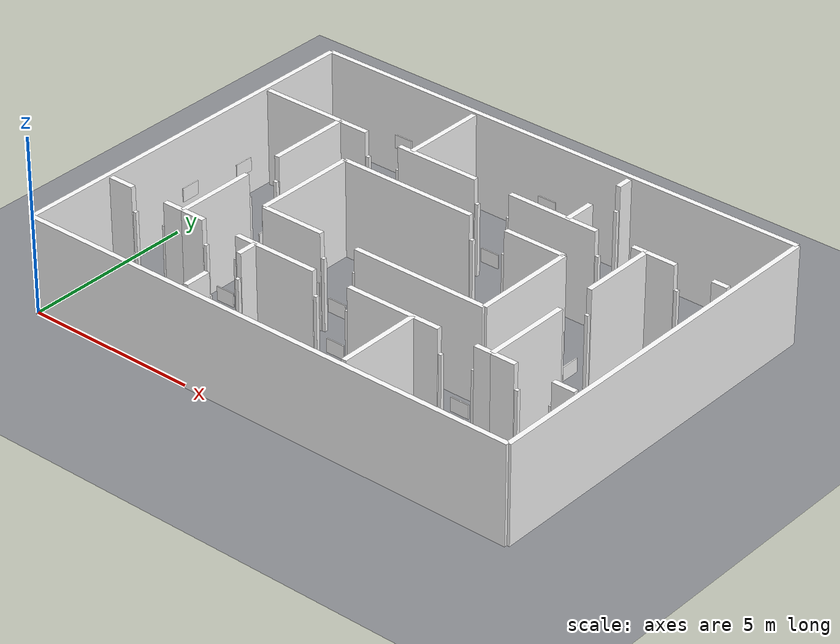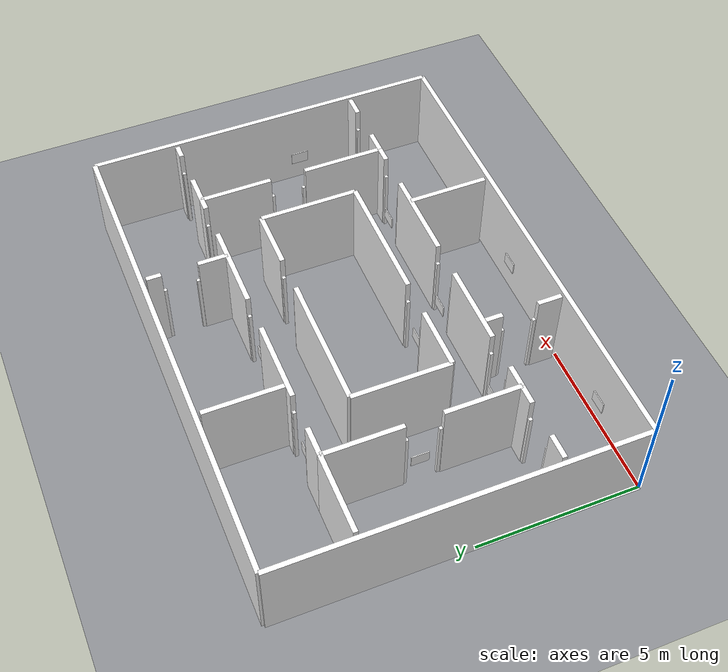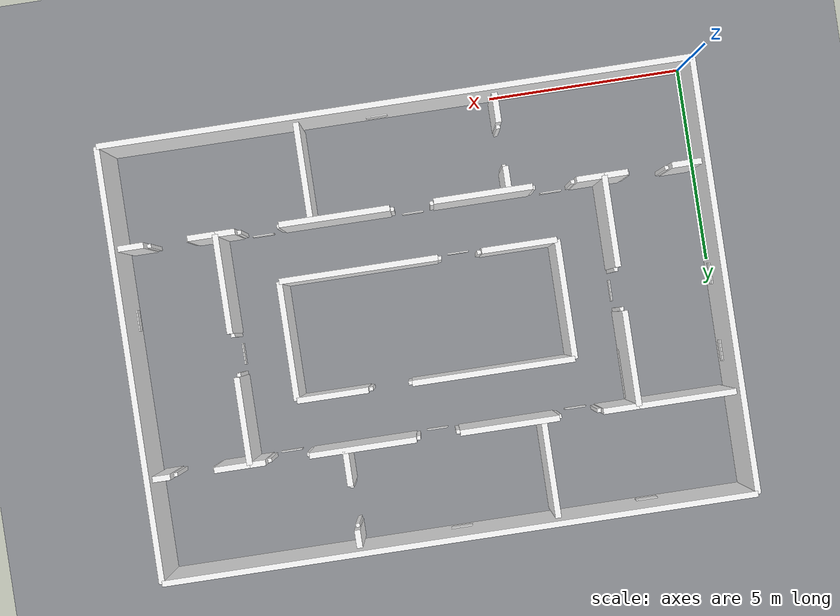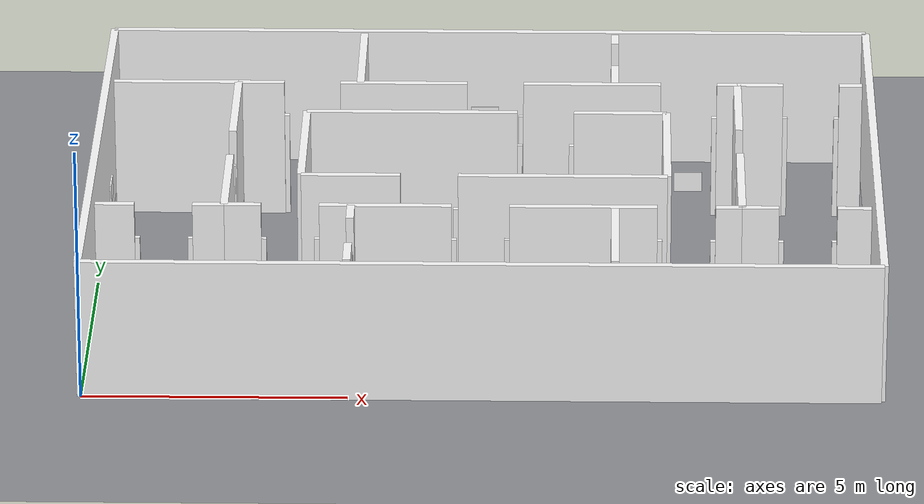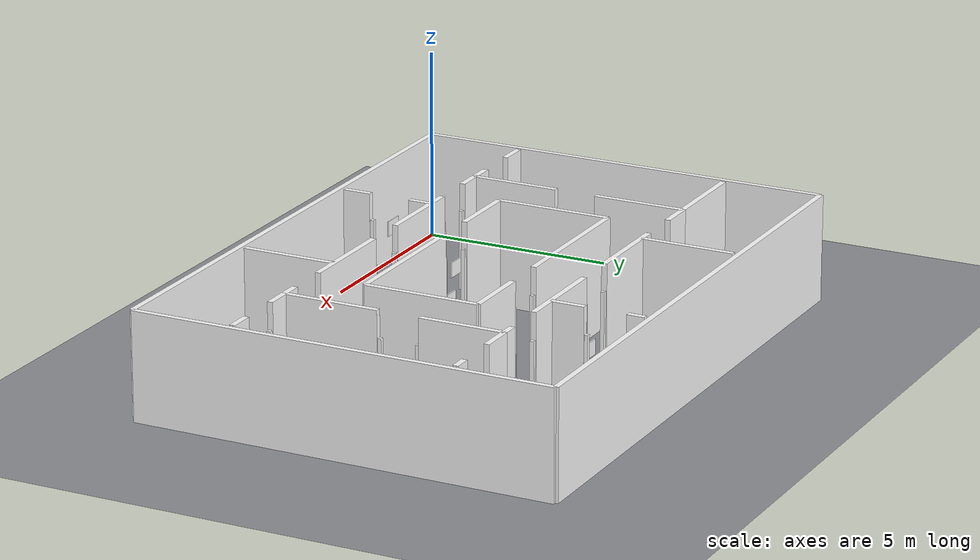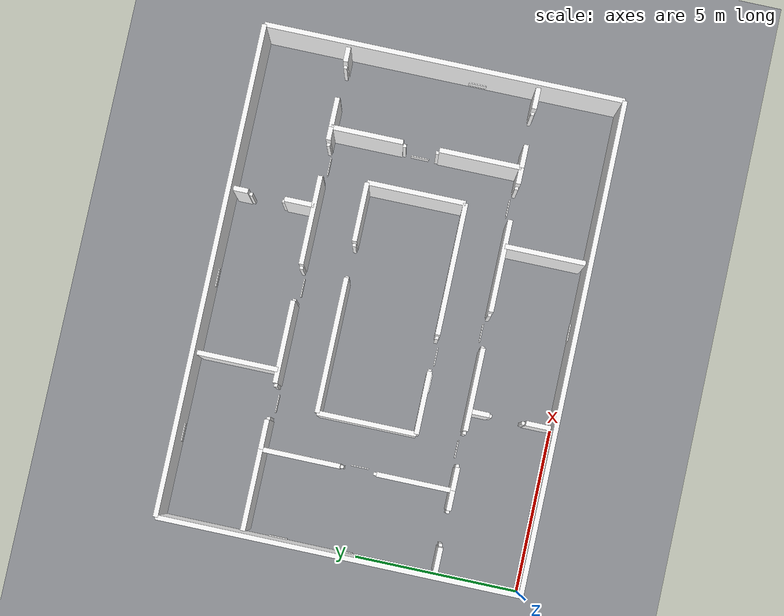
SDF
<sdf version="1.10">
 <world name="hexapod_facility">
  <model name="ground">
   <static>true</static>
   <link name="plane">
    <visual name="vis">
     <geometry><plane><normal>0 0 1</normal><size>60 60</size></plane></geometry>
     <material><diffuse>0.55 0.56 0.58 1</diffuse></material>
    </visual>
   </link>
  </model>
  <model name="building">
   <static>true</static>
   <link name="structure">
    <collision name="wall_0_col">
     <pose>7.500 0.000 1.400 0 0 0</pose>
     <geometry><box><size>15.000 0.15 2.8</size></box></geometry>
    </collision>
    <visual name="wall_0_vis">
     <pose>7.500 0.000 1.400 0 0 0</pose>
     <geometry><box><size>15.000 0.15 2.8</size></box></geometry>
     <material>
      <diffuse>1 1 1 1</diffuse>
      <specular>0.15 0.15 0.15 1</specular>
      <pbr>
       <metal>
        <albedo_map>model://slam_assets/materials/textures/wall_loading.png</albedo_map>
        <roughness>0.85</roughness>
        <metalness>0.0</metalness>
       </metal>
      </pbr>
     </material>
    </visual>
    <collision name="wall_1_col">
     <pose>7.500 11.000 1.400 0 0 0</pose>
     <geometry><box><size>15.000 0.15 2.8</size></box></geometry>
    </collision>
    <visual name="wall_1_vis">
     <pose>7.500 11.000 1.400 0 0 0</pose>
     <geometry><box><size>15.000 0.15 2.8</size></box></geometry>
     <material>
      <diffuse>1 1 1 1</diffuse>
      <specular>0.15 0.15 0.15 1</specular>
      <pbr>
       <metal>
        <albedo_map>model://slam_assets/materials/textures/wall_workshop.png</albedo_map>
        <roughness>0.85</roughness>
        <metalness>0.0</metalness>
       </metal>
      </pbr>
     </material>
    </visual>
    <collision name="wall_2_col">
     <pose>0.000 5.500 1.400 0 0 0</pose>
     <geometry><box><size>0.15 11.000 2.8</size></box></geometry>
    </collision>
    <visual name="wall_2_vis">
     <pose>0.000 5.500 1.400 0 0 0</pose>
     <geometry><box><size>0.15 11.000 2.8</size></box></geometry>
     <material>
      <diffuse>1 1 1 1</diffuse>
      <specular>0.15 0.15 0.15 1</specular>
      <pbr>
       <metal>
        <albedo_map>model://slam_assets/materials/textures/wall_parts.png</albedo_map>
        <roughness>0.85</roughness>
        <metalness>0.0</metalness>
       </metal>
      </pbr>
     </material>
    </visual>
    <collision name="wall_3_col">
     <pose>15.000 5.500 1.400 0 0 0</pose>
     <geometry><box><size>0.15 11.000 2.8</size></box></geometry>
    </collision>
    <visual name="wall_3_vis">
     <pose>15.000 5.500 1.400 0 0 0</pose>
     <geometry><box><size>0.15 11.000 2.8</size></box></geometry>
     <material>
      <diffuse>1 1 1 1</diffuse>
      <specular>0.15 0.15 0.15 1</specular>
      <pbr>
       <metal>
        <albedo_map>model://slam_assets/materials/textures/wall_equipment.png</albedo_map>
        <roughness>0.85</roughness>
        <metalness>0.0</metalness>
       </metal>
      </pbr>
     </material>
    </visual>
    <collision name="wall_4_col">
     <pose>2.950 2.600 1.400 0 0 0</pose>
     <geometry><box><size>0.700 0.15 2.8</size></box></geometry>
    </collision>
    <visual name="wall_4_vis">
     <pose>2.950 2.600 1.400 0 0 0</pose>
     <geometry><box><size>0.700 0.15 2.8</size></box></geometry>
     <material>
      <diffuse>1 1 1 1</diffuse>
      <specular>0.15 0.15 0.15 1</specular>
      <pbr>
       <metal>
        <albedo_map>model://slam_assets/materials/textures/wall_lab.png</albedo_map>
        <roughness>0.85</roughness>
        <metalness>0.0</metalness>
       </metal>
      </pbr>
     </material>
    </visual>
    <collision name="wall_5_col">
     <pose>5.650 2.600 1.400 0 0 0</pose>
     <geometry><box><size>2.500 0.15 2.8</size></box></geometry>
    </collision>
    <visual name="wall_5_vis">
     <pose>5.650 2.600 1.400 0 0 0</pose>
     <geometry><box><size>2.500 0.15 2.8</size></box></geometry>
     <material>
      <diffuse>1 1 1 1</diffuse>
      <specular>0.15 0.15 0.15 1</specular>
      <pbr>
       <metal>
        <albedo_map>model://slam_assets/materials/textures/wall_loading.png</albedo_map>
        <roughness>0.85</roughness>
        <metalness>0.0</metalness>
       </metal>
      </pbr>
     </material>
    </visual>
    <collision name="wall_6_col">
     <pose>9.400 2.600 1.400 0 0 0</pose>
     <geometry><box><size>2.800 0.15 2.8</size></box></geometry>
    </collision>
    <visual name="wall_6_vis">
     <pose>9.400 2.600 1.400 0 0 0</pose>
     <geometry><box><size>2.800 0.15 2.8</size></box></geometry>
     <material>
      <diffuse>1 1 1 1</diffuse>
      <specular>0.15 0.15 0.15 1</specular>
      <pbr>
       <metal>
        <albedo_map>model://slam_assets/materials/textures/wall_loading.png</albedo_map>
        <roughness>0.85</roughness>
        <metalness>0.0</metalness>
       </metal>
      </pbr>
     </material>
    </visual>
    <collision name="wall_7_col">
     <pose>12.150 2.600 1.400 0 0 0</pose>
     <geometry><box><size>0.500 0.15 2.8</size></box></geometry>
    </collision>
    <visual name="wall_7_vis">
     <pose>12.150 2.600 1.400 0 0 0</pose>
     <geometry><box><size>0.500 0.15 2.8</size></box></geometry>
     <material>
      <diffuse>1 1 1 1</diffuse>
      <specular>0.15 0.15 0.15 1</specular>
      <pbr>
       <metal>
        <albedo_map>model://slam_assets/materials/textures/wall_testing.png</albedo_map>
        <roughness>0.85</roughness>
        <metalness>0.0</metalness>
       </metal>
      </pbr>
     </material>
    </visual>
    <collision name="wall_8_col">
     <pose>3.050 8.400 1.400 0 0 0</pose>
     <geometry><box><size>0.900 0.15 2.8</size></box></geometry>
    </collision>
    <visual name="wall_8_vis">
     <pose>3.050 8.400 1.400 0 0 0</pose>
     <geometry><box><size>0.900 0.15 2.8</size></box></geometry>
     <material>
      <diffuse>1 1 1 1</diffuse>
      <specular>0.15 0.15 0.15 1</specular>
      <pbr>
       <metal>
        <albedo_map>model://slam_assets/materials/textures/wall_storage.png</albedo_map>
        <roughness>0.85</roughness>
        <metalness>0.0</metalness>
       </metal>
      </pbr>
     </material>
    </visual>
    <collision name="wall_9_col">
     <pose>5.850 8.400 1.400 0 0 0</pose>
     <geometry><box><size>2.500 0.15 2.8</size></box></geometry>
    </collision>
    <visual name="wall_9_vis">
     <pose>5.850 8.400 1.400 0 0 0</pose>
     <geometry><box><size>2.500 0.15 2.8</size></box></geometry>
     <material>
      <diffuse>1 1 1 1</diffuse>
      <specular>0.15 0.15 0.15 1</specular>
      <pbr>
       <metal>
        <albedo_map>model://slam_assets/materials/textures/wall_workshop.png</albedo_map>
        <roughness>0.85</roughness>
        <metalness>0.0</metalness>
       </metal>
      </pbr>
     </material>
    </visual>
    <collision name="wall_10_col">
     <pose>9.550 8.400 1.400 0 0 0</pose>
     <geometry><box><size>2.700 0.15 2.8</size></box></geometry>
    </collision>
    <visual name="wall_10_vis">
     <pose>9.550 8.400 1.400 0 0 0</pose>
     <geometry><box><size>2.700 0.15 2.8</size></box></geometry>
     <material>
      <diffuse>1 1 1 1</diffuse>
      <specular>0.15 0.15 0.15 1</specular>
      <pbr>
       <metal>
        <albedo_map>model://slam_assets/materials/textures/wall_workshop.png</albedo_map>
        <roughness>0.85</roughness>
        <metalness>0.0</metalness>
       </metal>
      </pbr>
     </material>
    </visual>
    <collision name="wall_11_col">
     <pose>12.200 8.400 1.400 0 0 0</pose>
     <geometry><box><size>0.400 0.15 2.8</size></box></geometry>
    </collision>
    <visual name="wall_11_vis">
     <pose>12.200 8.400 1.400 0 0 0</pose>
     <geometry><box><size>0.400 0.15 2.8</size></box></geometry>
     <material>
      <diffuse>1 1 1 1</diffuse>
      <specular>0.15 0.15 0.15 1</specular>
      <pbr>
       <metal>
        <albedo_map>model://slam_assets/materials/textures/wall_maintenance.png</albedo_map>
        <roughness>0.85</roughness>
        <metalness>0.0</metalness>
       </metal>
      </pbr>
     </material>
    </visual>
    <collision name="wall_12_col">
     <pose>2.600 3.750 1.400 0 0 0</pose>
     <geometry><box><size>0.15 2.300 2.8</size></box></geometry>
    </collision>
    <visual name="wall_12_vis">
     <pose>2.600 3.750 1.400 0 0 0</pose>
     <geometry><box><size>0.15 2.300 2.8</size></box></geometry>
     <material>
      <diffuse>1 1 1 1</diffuse>
      <specular>0.15 0.15 0.15 1</specular>
      <pbr>
       <metal>
        <albedo_map>model://slam_assets/materials/textures/wall_parts.png</albedo_map>
        <roughness>0.85</roughness>
        <metalness>0.0</metalness>
       </metal>
      </pbr>
     </material>
    </visual>
    <collision name="wall_13_col">
     <pose>2.600 7.200 1.400 0 0 0</pose>
     <geometry><box><size>0.15 2.400 2.8</size></box></geometry>
    </collision>
    <visual name="wall_13_vis">
     <pose>2.600 7.200 1.400 0 0 0</pose>
     <geometry><box><size>0.15 2.400 2.8</size></box></geometry>
     <material>
      <diffuse>1 1 1 1</diffuse>
      <specular>0.15 0.15 0.15 1</specular>
      <pbr>
       <metal>
        <albedo_map>model://slam_assets/materials/textures/wall_parts.png</albedo_map>
        <roughness>0.85</roughness>
        <metalness>0.0</metalness>
       </metal>
      </pbr>
     </material>
    </visual>
    <collision name="wall_14_col">
     <pose>12.400 3.850 1.400 0 0 0</pose>
     <geometry><box><size>0.15 2.500 2.8</size></box></geometry>
    </collision>
    <visual name="wall_14_vis">
     <pose>12.400 3.850 1.400 0 0 0</pose>
     <geometry><box><size>0.15 2.500 2.8</size></box></geometry>
     <material>
      <diffuse>1 1 1 1</diffuse>
      <specular>0.15 0.15 0.15 1</specular>
      <pbr>
       <metal>
        <albedo_map>model://slam_assets/materials/textures/wall_equipment.png</albedo_map>
        <roughness>0.85</roughness>
        <metalness>0.0</metalness>
       </metal>
      </pbr>
     </material>
    </visual>
    <collision name="wall_15_col">
     <pose>12.400 7.300 1.400 0 0 0</pose>
     <geometry><box><size>0.15 2.200 2.8</size></box></geometry>
    </collision>
    <visual name="wall_15_vis">
     <pose>12.400 7.300 1.400 0 0 0</pose>
     <geometry><box><size>0.15 2.200 2.8</size></box></geometry>
     <material>
      <diffuse>1 1 1 1</diffuse>
      <specular>0.15 0.15 0.15 1</specular>
      <pbr>
       <metal>
        <albedo_map>model://slam_assets/materials/textures/wall_equipment.png</albedo_map>
        <roughness>0.85</roughness>
        <metalness>0.0</metalness>
       </metal>
      </pbr>
     </material>
    </visual>
    <collision name="wall_16_col">
     <pose>4.950 4.000 1.400 0 0 0</pose>
     <geometry><box><size>1.900 0.15 2.8</size></box></geometry>
    </collision>
    <visual name="wall_16_vis">
     <pose>4.950 4.000 1.400 0 0 0</pose>
     <geometry><box><size>1.900 0.15 2.8</size></box></geometry>
     <material>
      <diffuse>1 1 1 1</diffuse>
      <specular>0.15 0.15 0.15 1</specular>
      <pbr>
       <metal>
        <albedo_map>model://slam_assets/materials/textures/wall_machine.png</albedo_map>
        <roughness>0.85</roughness>
        <metalness>0.0</metalness>
       </metal>
      </pbr>
     </material>
    </visual>
    <collision name="wall_17_col">
     <pose>9.000 4.000 1.400 0 0 0</pose>
     <geometry><box><size>4.000 0.15 2.8</size></box></geometry>
    </collision>
    <visual name="wall_17_vis">
     <pose>9.000 4.000 1.400 0 0 0</pose>
     <geometry><box><size>4.000 0.15 2.8</size></box></geometry>
     <material>
      <diffuse>1 1 1 1</diffuse>
      <specular>0.15 0.15 0.15 1</specular>
      <pbr>
       <metal>
        <albedo_map>model://slam_assets/materials/textures/wall_machine.png</albedo_map>
        <roughness>0.85</roughness>
        <metalness>0.0</metalness>
       </metal>
      </pbr>
     </material>
    </visual>
    <collision name="wall_18_col">
     <pose>6.050 7.000 1.400 0 0 0</pose>
     <geometry><box><size>4.100 0.15 2.8</size></box></geometry>
    </collision>
    <visual name="wall_18_vis">
     <pose>6.050 7.000 1.400 0 0 0</pose>
     <geometry><box><size>4.100 0.15 2.8</size></box></geometry>
     <material>
      <diffuse>1 1 1 1</diffuse>
      <specular>0.15 0.15 0.15 1</specular>
      <pbr>
       <metal>
        <albedo_map>model://slam_assets/materials/textures/wall_machine.png</albedo_map>
        <roughness>0.85</roughness>
        <metalness>0.0</metalness>
       </metal>
      </pbr>
     </material>
    </visual>
    <collision name="wall_19_col">
     <pose>10.100 7.000 1.400 0 0 0</pose>
     <geometry><box><size>1.800 0.15 2.8</size></box></geometry>
    </collision>
    <visual name="wall_19_vis">
     <pose>10.100 7.000 1.400 0 0 0</pose>
     <geometry><box><size>1.800 0.15 2.8</size></box></geometry>
     <material>
      <diffuse>1 1 1 1</diffuse>
      <specular>0.15 0.15 0.15 1</specular>
      <pbr>
       <metal>
        <albedo_map>model://slam_assets/materials/textures/wall_machine.png</albedo_map>
        <roughness>0.85</roughness>
        <metalness>0.0</metalness>
       </metal>
      </pbr>
     </material>
    </visual>
    <collision name="wall_20_col">
     <pose>4.000 5.500 1.400 0 0 0</pose>
     <geometry><box><size>0.15 3.000 2.8</size></box></geometry>
    </collision>
    <visual name="wall_20_vis">
     <pose>4.000 5.500 1.400 0 0 0</pose>
     <geometry><box><size>0.15 3.000 2.8</size></box></geometry>
     <material>
      <diffuse>1 1 1 1</diffuse>
      <specular>0.15 0.15 0.15 1</specular>
      <pbr>
       <metal>
        <albedo_map>model://slam_assets/materials/textures/wall_machine.png</albedo_map>
        <roughness>0.85</roughness>
        <metalness>0.0</metalness>
       </metal>
      </pbr>
     </material>
    </visual>
    <collision name="wall_21_col">
     <pose>11.000 5.500 1.400 0 0 0</pose>
     <geometry><box><size>0.15 3.000 2.8</size></box></geometry>
    </collision>
    <visual name="wall_21_vis">
     <pose>11.000 5.500 1.400 0 0 0</pose>
     <geometry><box><size>0.15 3.000 2.8</size></box></geometry>
     <material>
      <diffuse>1 1 1 1</diffuse>
      <specular>0.15 0.15 0.15 1</specular>
      <pbr>
       <metal>
        <albedo_map>model://slam_assets/materials/textures/wall_machine.png</albedo_map>
        <roughness>0.85</roughness>
        <metalness>0.0</metalness>
       </metal>
      </pbr>
     </material>
    </visual>
    <collision name="wall_22_col">
     <pose>5.000 0.525 1.400 0 0 0</pose>
     <geometry><box><size>0.15 0.750 2.8</size></box></geometry>
    </collision>
    <visual name="wall_22_vis">
     <pose>5.000 0.525 1.400 0 0 0</pose>
     <geometry><box><size>0.15 0.750 2.8</size></box></geometry>
     <material>
      <diffuse>1 1 1 1</diffuse>
      <specular>0.15 0.15 0.15 1</specular>
      <pbr>
       <metal>
        <albedo_map>model://slam_assets/materials/textures/wall_lab.png</albedo_map>
        <roughness>0.85</roughness>
        <metalness>0.0</metalness>
       </metal>
      </pbr>
     </material>
    </visual>
    <collision name="wall_23_col">
     <pose>5.000 2.300 1.400 0 0 0</pose>
     <geometry><box><size>0.15 0.600 2.8</size></box></geometry>
    </collision>
    <visual name="wall_23_vis">
     <pose>5.000 2.300 1.400 0 0 0</pose>
     <geometry><box><size>0.15 0.600 2.8</size></box></geometry>
     <material>
      <diffuse>1 1 1 1</diffuse>
      <specular>0.15 0.15 0.15 1</specular>
      <pbr>
       <metal>
        <albedo_map>model://slam_assets/materials/textures/wall_lab.png</albedo_map>
        <roughness>0.85</roughness>
        <metalness>0.0</metalness>
       </metal>
      </pbr>
     </material>
    </visual>
    <collision name="wall_24_col">
     <pose>10.000 1.375 1.400 0 0 0</pose>
     <geometry><box><size>0.15 2.450 2.8</size></box></geometry>
    </collision>
    <visual name="wall_24_vis">
     <pose>10.000 1.375 1.400 0 0 0</pose>
     <geometry><box><size>0.15 2.450 2.8</size></box></geometry>
     <material>
      <diffuse>1 1 1 1</diffuse>
      <specular>0.15 0.15 0.15 1</specular>
      <pbr>
       <metal>
        <albedo_map>model://slam_assets/materials/textures/wall_loading.png</albedo_map>
        <roughness>0.85</roughness>
        <metalness>0.0</metalness>
       </metal>
      </pbr>
     </material>
    </visual>
    <collision name="wall_25_col">
     <pose>5.000 9.625 1.400 0 0 0</pose>
     <geometry><box><size>0.15 2.450 2.8</size></box></geometry>
    </collision>
    <visual name="wall_25_vis">
     <pose>5.000 9.625 1.400 0 0 0</pose>
     <geometry><box><size>0.15 2.450 2.8</size></box></geometry>
     <material>
      <diffuse>1 1 1 1</diffuse>
      <specular>0.15 0.15 0.15 1</specular>
      <pbr>
       <metal>
        <albedo_map>model://slam_assets/materials/textures/wall_storage.png</albedo_map>
        <roughness>0.85</roughness>
        <metalness>0.0</metalness>
       </metal>
      </pbr>
     </material>
    </visual>
    <collision name="wall_26_col">
     <pose>10.000 8.850 1.400 0 0 0</pose>
     <geometry><box><size>0.15 0.900 2.8</size></box></geometry>
    </collision>
    <visual name="wall_26_vis">
     <pose>10.000 8.850 1.400 0 0 0</pose>
     <geometry><box><size>0.15 0.900 2.8</size></box></geometry>
     <material>
      <diffuse>1 1 1 1</diffuse>
      <specular>0.15 0.15 0.15 1</specular>
      <pbr>
       <metal>
        <albedo_map>model://slam_assets/materials/textures/wall_workshop.png</albedo_map>
        <roughness>0.85</roughness>
        <metalness>0.0</metalness>
       </metal>
      </pbr>
     </material>
    </visual>
    <collision name="wall_27_col">
     <pose>10.000 10.625 1.400 0 0 0</pose>
     <geometry><box><size>0.15 0.450 2.8</size></box></geometry>
    </collision>
    <visual name="wall_27_vis">
     <pose>10.000 10.625 1.400 0 0 0</pose>
     <geometry><box><size>0.15 0.450 2.8</size></box></geometry>
     <material>
      <diffuse>1 1 1 1</diffuse>
      <specular>0.15 0.15 0.15 1</specular>
      <pbr>
       <metal>
        <albedo_map>model://slam_assets/materials/textures/wall_workshop.png</albedo_map>
        <roughness>0.85</roughness>
        <metalness>0.0</metalness>
       </metal>
      </pbr>
     </material>
    </visual>
    <collision name="wall_28_col">
     <pose>0.525 2.600 1.400 0 0 0</pose>
     <geometry><box><size>0.750 0.15 2.8</size></box></geometry>
    </collision>
    <visual name="wall_28_vis">
     <pose>0.525 2.600 1.400 0 0 0</pose>
     <geometry><box><size>0.750 0.15 2.8</size></box></geometry>
     <material>
      <diffuse>1 1 1 1</diffuse>
      <specular>0.15 0.15 0.15 1</specular>
      <pbr>
       <metal>
        <albedo_map>model://slam_assets/materials/textures/wall_lab.png</albedo_map>
        <roughness>0.85</roughness>
        <metalness>0.0</metalness>
       </metal>
      </pbr>
     </material>
    </visual>
    <collision name="wall_29_col">
     <pose>2.300 2.600 1.400 0 0 0</pose>
     <geometry><box><size>0.600 0.15 2.8</size></box></geometry>
    </collision>
    <visual name="wall_29_vis">
     <pose>2.300 2.600 1.400 0 0 0</pose>
     <geometry><box><size>0.600 0.15 2.8</size></box></geometry>
     <material>
      <diffuse>1 1 1 1</diffuse>
      <specular>0.15 0.15 0.15 1</specular>
      <pbr>
       <metal>
        <albedo_map>model://slam_assets/materials/textures/wall_lab.png</albedo_map>
        <roughness>0.85</roughness>
        <metalness>0.0</metalness>
       </metal>
      </pbr>
     </material>
    </visual>
    <collision name="wall_30_col">
     <pose>1.375 8.400 1.400 0 0 0</pose>
     <geometry><box><size>2.450 0.15 2.8</size></box></geometry>
    </collision>
    <visual name="wall_30_vis">
     <pose>1.375 8.400 1.400 0 0 0</pose>
     <geometry><box><size>2.450 0.15 2.8</size></box></geometry>
     <material>
      <diffuse>1 1 1 1</diffuse>
      <specular>0.15 0.15 0.15 1</specular>
      <pbr>
       <metal>
        <albedo_map>model://slam_assets/materials/textures/wall_parts.png</albedo_map>
        <roughness>0.85</roughness>
        <metalness>0.0</metalness>
       </metal>
      </pbr>
     </material>
    </visual>
    <collision name="wall_31_col">
     <pose>12.750 2.600 1.400 0 0 0</pose>
     <geometry><box><size>0.700 0.15 2.8</size></box></geometry>
    </collision>
    <visual name="wall_31_vis">
     <pose>12.750 2.600 1.400 0 0 0</pose>
     <geometry><box><size>0.700 0.15 2.8</size></box></geometry>
     <material>
      <diffuse>1 1 1 1</diffuse>
      <specular>0.15 0.15 0.15 1</specular>
      <pbr>
       <metal>
        <albedo_map>model://slam_assets/materials/textures/wall_testing.png</albedo_map>
        <roughness>0.85</roughness>
        <metalness>0.0</metalness>
       </metal>
      </pbr>
     </material>
    </visual>
    <collision name="wall_32_col">
     <pose>14.525 2.600 1.400 0 0 0</pose>
     <geometry><box><size>0.650 0.15 2.8</size></box></geometry>
    </collision>
    <visual name="wall_32_vis">
     <pose>14.525 2.600 1.400 0 0 0</pose>
     <geometry><box><size>0.650 0.15 2.8</size></box></geometry>
     <material>
      <diffuse>1 1 1 1</diffuse>
      <specular>0.15 0.15 0.15 1</specular>
      <pbr>
       <metal>
        <albedo_map>model://slam_assets/materials/textures/wall_testing.png</albedo_map>
        <roughness>0.85</roughness>
        <metalness>0.0</metalness>
       </metal>
      </pbr>
     </material>
    </visual>
    <collision name="wall_33_col">
     <pose>12.850 8.400 1.400 0 0 0</pose>
     <geometry><box><size>0.900 0.15 2.8</size></box></geometry>
    </collision>
    <visual name="wall_33_vis">
     <pose>12.850 8.400 1.400 0 0 0</pose>
     <geometry><box><size>0.900 0.15 2.8</size></box></geometry>
     <material>
      <diffuse>1 1 1 1</diffuse>
      <specular>0.15 0.15 0.15 1</specular>
      <pbr>
       <metal>
        <albedo_map>model://slam_assets/materials/textures/wall_equipment.png</albedo_map>
        <roughness>0.85</roughness>
        <metalness>0.0</metalness>
       </metal>
      </pbr>
     </material>
    </visual>
    <collision name="wall_34_col">
     <pose>14.625 8.400 1.400 0 0 0</pose>
     <geometry><box><size>0.450 0.15 2.8</size></box></geometry>
    </collision>
    <visual name="wall_34_vis">
     <pose>14.625 8.400 1.400 0 0 0</pose>
     <geometry><box><size>0.450 0.15 2.8</size></box></geometry>
     <material>
      <diffuse>1 1 1 1</diffuse>
      <specular>0.15 0.15 0.15 1</specular>
      <pbr>
       <metal>
        <albedo_map>model://slam_assets/materials/textures/wall_equipment.png</albedo_map>
        <roughness>0.85</roughness>
        <metalness>0.0</metalness>
       </metal>
      </pbr>
     </material>
    </visual>
    <collision name="doorframe_0_col">
     <pose>3.300 2.600 1.05 0 0 0</pose>
     <geometry><box><size>0.19 0.10 2.10</size></box></geometry>
    </collision>
    <visual name="doorframe_0_vis">
     <pose>3.300 2.600 1.05 0 0 0</pose>
     <geometry><box><size>0.19 0.10 2.10</size></box></geometry>
     <material>
      <diffuse>1 1 1 1</diffuse>
      <specular>0.15 0.15 0.15 1</specular>
      <pbr>
       <metal>
        <albedo_map>model://slam_assets/materials/textures/pillar_paint.png</albedo_map>
        <roughness>0.85</roughness>
        <metalness>0.0</metalness>
       </metal>
      </pbr>
     </material>
    </visual>
    <collision name="doorframe_1_col">
     <pose>4.400 2.600 1.05 0 0 0</pose>
     <geometry><box><size>0.19 0.10 2.10</size></box></geometry>
    </collision>
    <visual name="doorframe_1_vis">
     <pose>4.400 2.600 1.05 0 0 0</pose>
     <geometry><box><size>0.19 0.10 2.10</size></box></geometry>
     <material>
      <diffuse>1 1 1 1</diffuse>
      <specular>0.15 0.15 0.15 1</specular>
      <pbr>
       <metal>
        <albedo_map>model://slam_assets/materials/textures/pillar_paint.png</albedo_map>
        <roughness>0.85</roughness>
        <metalness>0.0</metalness>
       </metal>
      </pbr>
     </material>
    </visual>
    <collision name="doorframe_2_col">
     <pose>6.900 2.600 1.05 0 0 0</pose>
     <geometry><box><size>0.19 0.10 2.10</size></box></geometry>
    </collision>
    <visual name="doorframe_2_vis">
     <pose>6.900 2.600 1.05 0 0 0</pose>
     <geometry><box><size>0.19 0.10 2.10</size></box></geometry>
     <material>
      <diffuse>1 1 1 1</diffuse>
      <specular>0.15 0.15 0.15 1</specular>
      <pbr>
       <metal>
        <albedo_map>model://slam_assets/materials/textures/pillar_paint.png</albedo_map>
        <roughness>0.85</roughness>
        <metalness>0.0</metalness>
       </metal>
      </pbr>
     </material>
    </visual>
    <collision name="doorframe_3_col">
     <pose>8.000 2.600 1.05 0 0 0</pose>
     <geometry><box><size>0.19 0.10 2.10</size></box></geometry>
    </collision>
    <visual name="doorframe_3_vis">
     <pose>8.000 2.600 1.05 0 0 0</pose>
     <geometry><box><size>0.19 0.10 2.10</size></box></geometry>
     <material>
      <diffuse>1 1 1 1</diffuse>
      <specular>0.15 0.15 0.15 1</specular>
      <pbr>
       <metal>
        <albedo_map>model://slam_assets/materials/textures/pillar_paint.png</albedo_map>
        <roughness>0.85</roughness>
        <metalness>0.0</metalness>
       </metal>
      </pbr>
     </material>
    </visual>
    <collision name="doorframe_4_col">
     <pose>10.800 2.600 1.05 0 0 0</pose>
     <geometry><box><size>0.19 0.10 2.10</size></box></geometry>
    </collision>
    <visual name="doorframe_4_vis">
     <pose>10.800 2.600 1.05 0 0 0</pose>
     <geometry><box><size>0.19 0.10 2.10</size></box></geometry>
     <material>
      <diffuse>1 1 1 1</diffuse>
      <specular>0.15 0.15 0.15 1</specular>
      <pbr>
       <metal>
        <albedo_map>model://slam_assets/materials/textures/pillar_paint.png</albedo_map>
        <roughness>0.85</roughness>
        <metalness>0.0</metalness>
       </metal>
      </pbr>
     </material>
    </visual>
    <collision name="doorframe_5_col">
     <pose>11.900 2.600 1.05 0 0 0</pose>
     <geometry><box><size>0.19 0.10 2.10</size></box></geometry>
    </collision>
    <visual name="doorframe_5_vis">
     <pose>11.900 2.600 1.05 0 0 0</pose>
     <geometry><box><size>0.19 0.10 2.10</size></box></geometry>
     <material>
      <diffuse>1 1 1 1</diffuse>
      <specular>0.15 0.15 0.15 1</specular>
      <pbr>
       <metal>
        <albedo_map>model://slam_assets/materials/textures/pillar_paint.png</albedo_map>
        <roughness>0.85</roughness>
        <metalness>0.0</metalness>
       </metal>
      </pbr>
     </material>
    </visual>
    <collision name="doorframe_6_col">
     <pose>3.500 8.400 1.05 0 0 0</pose>
     <geometry><box><size>0.19 0.10 2.10</size></box></geometry>
    </collision>
    <visual name="doorframe_6_vis">
     <pose>3.500 8.400 1.05 0 0 0</pose>
     <geometry><box><size>0.19 0.10 2.10</size></box></geometry>
     <material>
      <diffuse>1 1 1 1</diffuse>
      <specular>0.15 0.15 0.15 1</specular>
      <pbr>
       <metal>
        <albedo_map>model://slam_assets/materials/textures/pillar_paint.png</albedo_map>
        <roughness>0.85</roughness>
        <metalness>0.0</metalness>
       </metal>
      </pbr>
     </material>
    </visual>
    <collision name="doorframe_7_col">
     <pose>4.600 8.400 1.05 0 0 0</pose>
     <geometry><box><size>0.19 0.10 2.10</size></box></geometry>
    </collision>
    <visual name="doorframe_7_vis">
     <pose>4.600 8.400 1.05 0 0 0</pose>
     <geometry><box><size>0.19 0.10 2.10</size></box></geometry>
     <material>
      <diffuse>1 1 1 1</diffuse>
      <specular>0.15 0.15 0.15 1</specular>
      <pbr>
       <metal>
        <albedo_map>model://slam_assets/materials/textures/pillar_paint.png</albedo_map>
        <roughness>0.85</roughness>
        <metalness>0.0</metalness>
       </metal>
      </pbr>
     </material>
    </visual>
    <collision name="doorframe_8_col">
     <pose>7.100 8.400 1.05 0 0 0</pose>
     <geometry><box><size>0.19 0.10 2.10</size></box></geometry>
    </collision>
    <visual name="doorframe_8_vis">
     <pose>7.100 8.400 1.05 0 0 0</pose>
     <geometry><box><size>0.19 0.10 2.10</size></box></geometry>
     <material>
      <diffuse>1 1 1 1</diffuse>
      <specular>0.15 0.15 0.15 1</specular>
      <pbr>
       <metal>
        <albedo_map>model://slam_assets/materials/textures/pillar_paint.png</albedo_map>
        <roughness>0.85</roughness>
        <metalness>0.0</metalness>
       </metal>
      </pbr>
     </material>
    </visual>
    <collision name="doorframe_9_col">
     <pose>8.200 8.400 1.05 0 0 0</pose>
     <geometry><box><size>0.19 0.10 2.10</size></box></geometry>
    </collision>
    <visual name="doorframe_9_vis">
     <pose>8.200 8.400 1.05 0 0 0</pose>
     <geometry><box><size>0.19 0.10 2.10</size></box></geometry>
     <material>
      <diffuse>1 1 1 1</diffuse>
      <specular>0.15 0.15 0.15 1</specular>
      <pbr>
       <metal>
        <albedo_map>model://slam_assets/materials/textures/pillar_paint.png</albedo_map>
        <roughness>0.85</roughness>
        <metalness>0.0</metalness>
       </metal>
      </pbr>
     </material>
    </visual>
    <collision name="doorframe_10_col">
     <pose>10.900 8.400 1.05 0 0 0</pose>
     <geometry><box><size>0.19 0.10 2.10</size></box></geometry>
    </collision>
    <visual name="doorframe_10_vis">
     <pose>10.900 8.400 1.05 0 0 0</pose>
     <geometry><box><size>0.19 0.10 2.10</size></box></geometry>
     <material>
      <diffuse>1 1 1 1</diffuse>
      <specular>0.15 0.15 0.15 1</specular>
      <pbr>
       <metal>
        <albedo_map>model://slam_assets/materials/textures/pillar_paint.png</albedo_map>
        <roughness>0.85</roughness>
        <metalness>0.0</metalness>
       </metal>
      </pbr>
     </material>
    </visual>
    <collision name="doorframe_11_col">
     <pose>12.000 8.400 1.05 0 0 0</pose>
     <geometry><box><size>0.19 0.10 2.10</size></box></geometry>
    </collision>
    <visual name="doorframe_11_vis">
     <pose>12.000 8.400 1.05 0 0 0</pose>
     <geometry><box><size>0.19 0.10 2.10</size></box></geometry>
     <material>
      <diffuse>1 1 1 1</diffuse>
      <specular>0.15 0.15 0.15 1</specular>
      <pbr>
       <metal>
        <albedo_map>model://slam_assets/materials/textures/pillar_paint.png</albedo_map>
        <roughness>0.85</roughness>
        <metalness>0.0</metalness>
       </metal>
      </pbr>
     </material>
    </visual>
    <collision name="doorframe_12_col">
     <pose>2.600 4.900 1.05 0 0 0</pose>
     <geometry><box><size>0.10 0.19 2.10</size></box></geometry>
    </collision>
    <visual name="doorframe_12_vis">
     <pose>2.600 4.900 1.05 0 0 0</pose>
     <geometry><box><size>0.10 0.19 2.10</size></box></geometry>
     <material>
      <diffuse>1 1 1 1</diffuse>
      <specular>0.15 0.15 0.15 1</specular>
      <pbr>
       <metal>
        <albedo_map>model://slam_assets/materials/textures/pillar_paint.png</albedo_map>
        <roughness>0.85</roughness>
        <metalness>0.0</metalness>
       </metal>
      </pbr>
     </material>
    </visual>
    <collision name="doorframe_13_col">
     <pose>2.600 6.000 1.05 0 0 0</pose>
     <geometry><box><size>0.10 0.19 2.10</size></box></geometry>
    </collision>
    <visual name="doorframe_13_vis">
     <pose>2.600 6.000 1.05 0 0 0</pose>
     <geometry><box><size>0.10 0.19 2.10</size></box></geometry>
     <material>
      <diffuse>1 1 1 1</diffuse>
      <specular>0.15 0.15 0.15 1</specular>
      <pbr>
       <metal>
        <albedo_map>model://slam_assets/materials/textures/pillar_paint.png</albedo_map>
        <roughness>0.85</roughness>
        <metalness>0.0</metalness>
       </metal>
      </pbr>
     </material>
    </visual>
    <collision name="doorframe_14_col">
     <pose>12.400 5.100 1.05 0 0 0</pose>
     <geometry><box><size>0.10 0.19 2.10</size></box></geometry>
    </collision>
    <visual name="doorframe_14_vis">
     <pose>12.400 5.100 1.05 0 0 0</pose>
     <geometry><box><size>0.10 0.19 2.10</size></box></geometry>
     <material>
      <diffuse>1 1 1 1</diffuse>
      <specular>0.15 0.15 0.15 1</specular>
      <pbr>
       <metal>
        <albedo_map>model://slam_assets/materials/textures/pillar_paint.png</albedo_map>
        <roughness>0.85</roughness>
        <metalness>0.0</metalness>
       </metal>
      </pbr>
     </material>
    </visual>
    <collision name="doorframe_15_col">
     <pose>12.400 6.200 1.05 0 0 0</pose>
     <geometry><box><size>0.10 0.19 2.10</size></box></geometry>
    </collision>
    <visual name="doorframe_15_vis">
     <pose>12.400 6.200 1.05 0 0 0</pose>
     <geometry><box><size>0.10 0.19 2.10</size></box></geometry>
     <material>
      <diffuse>1 1 1 1</diffuse>
      <specular>0.15 0.15 0.15 1</specular>
      <pbr>
       <metal>
        <albedo_map>model://slam_assets/materials/textures/pillar_paint.png</albedo_map>
        <roughness>0.85</roughness>
        <metalness>0.0</metalness>
       </metal>
      </pbr>
     </material>
    </visual>
    <collision name="doorframe_16_col">
     <pose>5.900 4.000 1.05 0 0 0</pose>
     <geometry><box><size>0.19 0.10 2.10</size></box></geometry>
    </collision>
    <visual name="doorframe_16_vis">
     <pose>5.900 4.000 1.05 0 0 0</pose>
     <geometry><box><size>0.19 0.10 2.10</size></box></geometry>
     <material>
      <diffuse>1 1 1 1</diffuse>
      <specular>0.15 0.15 0.15 1</specular>
      <pbr>
       <metal>
        <albedo_map>model://slam_assets/materials/textures/pillar_paint.png</albedo_map>
        <roughness>0.85</roughness>
        <metalness>0.0</metalness>
       </metal>
      </pbr>
     </material>
    </visual>
    <collision name="doorframe_17_col">
     <pose>7.000 4.000 1.05 0 0 0</pose>
     <geometry><box><size>0.19 0.10 2.10</size></box></geometry>
    </collision>
    <visual name="doorframe_17_vis">
     <pose>7.000 4.000 1.05 0 0 0</pose>
     <geometry><box><size>0.19 0.10 2.10</size></box></geometry>
     <material>
      <diffuse>1 1 1 1</diffuse>
      <specular>0.15 0.15 0.15 1</specular>
      <pbr>
       <metal>
        <albedo_map>model://slam_assets/materials/textures/pillar_paint.png</albedo_map>
        <roughness>0.85</roughness>
        <metalness>0.0</metalness>
       </metal>
      </pbr>
     </material>
    </visual>
    <collision name="doorframe_18_col">
     <pose>8.100 7.000 1.05 0 0 0</pose>
     <geometry><box><size>0.19 0.10 2.10</size></box></geometry>
    </collision>
    <visual name="doorframe_18_vis">
     <pose>8.100 7.000 1.05 0 0 0</pose>
     <geometry><box><size>0.19 0.10 2.10</size></box></geometry>
     <material>
      <diffuse>1 1 1 1</diffuse>
      <specular>0.15 0.15 0.15 1</specular>
      <pbr>
       <metal>
        <albedo_map>model://slam_assets/materials/textures/pillar_paint.png</albedo_map>
        <roughness>0.85</roughness>
        <metalness>0.0</metalness>
       </metal>
      </pbr>
     </material>
    </visual>
    <collision name="doorframe_19_col">
     <pose>9.200 7.000 1.05 0 0 0</pose>
     <geometry><box><size>0.19 0.10 2.10</size></box></geometry>
    </collision>
    <visual name="doorframe_19_vis">
     <pose>9.200 7.000 1.05 0 0 0</pose>
     <geometry><box><size>0.19 0.10 2.10</size></box></geometry>
     <material>
      <diffuse>1 1 1 1</diffuse>
      <specular>0.15 0.15 0.15 1</specular>
      <pbr>
       <metal>
        <albedo_map>model://slam_assets/materials/textures/pillar_paint.png</albedo_map>
        <roughness>0.85</roughness>
        <metalness>0.0</metalness>
       </metal>
      </pbr>
     </material>
    </visual>
    <collision name="doorframe_20_col">
     <pose>5.000 0.900 1.05 0 0 0</pose>
     <geometry><box><size>0.10 0.19 2.10</size></box></geometry>
    </collision>
    <visual name="doorframe_20_vis">
     <pose>5.000 0.900 1.05 0 0 0</pose>
     <geometry><box><size>0.10 0.19 2.10</size></box></geometry>
     <material>
      <diffuse>1 1 1 1</diffuse>
      <specular>0.15 0.15 0.15 1</specular>
      <pbr>
       <metal>
        <albedo_map>model://slam_assets/materials/textures/pillar_paint.png</albedo_map>
        <roughness>0.85</roughness>
        <metalness>0.0</metalness>
       </metal>
      </pbr>
     </material>
    </visual>
    <collision name="doorframe_21_col">
     <pose>5.000 2.000 1.05 0 0 0</pose>
     <geometry><box><size>0.10 0.19 2.10</size></box></geometry>
    </collision>
    <visual name="doorframe_21_vis">
     <pose>5.000 2.000 1.05 0 0 0</pose>
     <geometry><box><size>0.10 0.19 2.10</size></box></geometry>
     <material>
      <diffuse>1 1 1 1</diffuse>
      <specular>0.15 0.15 0.15 1</specular>
      <pbr>
       <metal>
        <albedo_map>model://slam_assets/materials/textures/pillar_paint.png</albedo_map>
        <roughness>0.85</roughness>
        <metalness>0.0</metalness>
       </metal>
      </pbr>
     </material>
    </visual>
    <collision name="doorframe_22_col">
     <pose>10.000 9.300 1.05 0 0 0</pose>
     <geometry><box><size>0.10 0.19 2.10</size></box></geometry>
    </collision>
    <visual name="doorframe_22_vis">
     <pose>10.000 9.300 1.05 0 0 0</pose>
     <geometry><box><size>0.10 0.19 2.10</size></box></geometry>
     <material>
      <diffuse>1 1 1 1</diffuse>
      <specular>0.15 0.15 0.15 1</specular>
      <pbr>
       <metal>
        <albedo_map>model://slam_assets/materials/textures/pillar_paint.png</albedo_map>
        <roughness>0.85</roughness>
        <metalness>0.0</metalness>
       </metal>
      </pbr>
     </material>
    </visual>
    <collision name="doorframe_23_col">
     <pose>10.000 10.400 1.05 0 0 0</pose>
     <geometry><box><size>0.10 0.19 2.10</size></box></geometry>
    </collision>
    <visual name="doorframe_23_vis">
     <pose>10.000 10.400 1.05 0 0 0</pose>
     <geometry><box><size>0.10 0.19 2.10</size></box></geometry>
     <material>
      <diffuse>1 1 1 1</diffuse>
      <specular>0.15 0.15 0.15 1</specular>
      <pbr>
       <metal>
        <albedo_map>model://slam_assets/materials/textures/pillar_paint.png</albedo_map>
        <roughness>0.85</roughness>
        <metalness>0.0</metalness>
       </metal>
      </pbr>
     </material>
    </visual>
    <collision name="doorframe_24_col">
     <pose>0.900 2.600 1.05 0 0 0</pose>
     <geometry><box><size>0.19 0.10 2.10</size></box></geometry>
    </collision>
    <visual name="doorframe_24_vis">
     <pose>0.900 2.600 1.05 0 0 0</pose>
     <geometry><box><size>0.19 0.10 2.10</size></box></geometry>
     <material>
      <diffuse>1 1 1 1</diffuse>
      <specular>0.15 0.15 0.15 1</specular>
      <pbr>
       <metal>
        <albedo_map>model://slam_assets/materials/textures/pillar_paint.png</albedo_map>
        <roughness>0.85</roughness>
        <metalness>0.0</metalness>
       </metal>
      </pbr>
     </material>
    </visual>
    <collision name="doorframe_25_col">
     <pose>2.000 2.600 1.05 0 0 0</pose>
     <geometry><box><size>0.19 0.10 2.10</size></box></geometry>
    </collision>
    <visual name="doorframe_25_vis">
     <pose>2.000 2.600 1.05 0 0 0</pose>
     <geometry><box><size>0.19 0.10 2.10</size></box></geometry>
     <material>
      <diffuse>1 1 1 1</diffuse>
      <specular>0.15 0.15 0.15 1</specular>
      <pbr>
       <metal>
        <albedo_map>model://slam_assets/materials/textures/pillar_paint.png</albedo_map>
        <roughness>0.85</roughness>
        <metalness>0.0</metalness>
       </metal>
      </pbr>
     </material>
    </visual>
    <collision name="doorframe_26_col">
     <pose>13.100 2.600 1.05 0 0 0</pose>
     <geometry><box><size>0.19 0.10 2.10</size></box></geometry>
    </collision>
    <visual name="doorframe_26_vis">
     <pose>13.100 2.600 1.05 0 0 0</pose>
     <geometry><box><size>0.19 0.10 2.10</size></box></geometry>
     <material>
      <diffuse>1 1 1 1</diffuse>
      <specular>0.15 0.15 0.15 1</specular>
      <pbr>
       <metal>
        <albedo_map>model://slam_assets/materials/textures/pillar_paint.png</albedo_map>
        <roughness>0.85</roughness>
        <metalness>0.0</metalness>
       </metal>
      </pbr>
     </material>
    </visual>
    <collision name="doorframe_27_col">
     <pose>14.200 2.600 1.05 0 0 0</pose>
     <geometry><box><size>0.19 0.10 2.10</size></box></geometry>
    </collision>
    <visual name="doorframe_27_vis">
     <pose>14.200 2.600 1.05 0 0 0</pose>
     <geometry><box><size>0.19 0.10 2.10</size></box></geometry>
     <material>
      <diffuse>1 1 1 1</diffuse>
      <specular>0.15 0.15 0.15 1</specular>
      <pbr>
       <metal>
        <albedo_map>model://slam_assets/materials/textures/pillar_paint.png</albedo_map>
        <roughness>0.85</roughness>
        <metalness>0.0</metalness>
       </metal>
      </pbr>
     </material>
    </visual>
    <collision name="doorframe_28_col">
     <pose>13.300 8.400 1.05 0 0 0</pose>
     <geometry><box><size>0.19 0.10 2.10</size></box></geometry>
    </collision>
    <visual name="doorframe_28_vis">
     <pose>13.300 8.400 1.05 0 0 0</pose>
     <geometry><box><size>0.19 0.10 2.10</size></box></geometry>
     <material>
      <diffuse>1 1 1 1</diffuse>
      <specular>0.15 0.15 0.15 1</specular>
      <pbr>
       <metal>
        <albedo_map>model://slam_assets/materials/textures/pillar_paint.png</albedo_map>
        <roughness>0.85</roughness>
        <metalness>0.0</metalness>
       </metal>
      </pbr>
     </material>
    </visual>
    <collision name="doorframe_29_col">
     <pose>14.400 8.400 1.05 0 0 0</pose>
     <geometry><box><size>0.19 0.10 2.10</size></box></geometry>
    </collision>
    <visual name="doorframe_29_vis">
     <pose>14.400 8.400 1.05 0 0 0</pose>
     <geometry><box><size>0.19 0.10 2.10</size></box></geometry>
     <material>
      <diffuse>1 1 1 1</diffuse>
      <specular>0.15 0.15 0.15 1</specular>
      <pbr>
       <metal>
        <albedo_map>model://slam_assets/materials/textures/pillar_paint.png</albedo_map>
        <roughness>0.85</roughness>
        <metalness>0.0</metalness>
       </metal>
      </pbr>
     </material>
    </visual>
    <collision name="sign_0_col">
     <pose>3.85 2.7 0.75 0 0 0.0</pose>
     <geometry><box><size>0.55 0.03 0.40</size></box></geometry>
    </collision>
    <visual name="sign_0_vis">
     <pose>3.85 2.7 0.75 0 0 0.0</pose>
     <geometry><box><size>0.55 0.03 0.40</size></box></geometry>
     <material>
      <diffuse>1 1 1 1</diffuse>
      <specular>0.15 0.15 0.15 1</specular>
      <pbr>
       <metal>
        <albedo_map>model://slam_assets/materials/textures/door_d1.png</albedo_map>
        <roughness>0.85</roughness>
        <metalness>0.0</metalness>
       </metal>
      </pbr>
     </material>
    </visual>
    <collision name="sign_1_col">
     <pose>7.45 2.7 0.75 0 0 0.0</pose>
     <geometry><box><size>0.55 0.03 0.40</size></box></geometry>
    </collision>
    <visual name="sign_1_vis">
     <pose>7.45 2.7 0.75 0 0 0.0</pose>
     <geometry><box><size>0.55 0.03 0.40</size></box></geometry>
     <material>
      <diffuse>1 1 1 1</diffuse>
      <specular>0.15 0.15 0.15 1</specular>
      <pbr>
       <metal>
        <albedo_map>model://slam_assets/materials/textures/door_d2.png</albedo_map>
        <roughness>0.85</roughness>
        <metalness>0.0</metalness>
       </metal>
      </pbr>
     </material>
    </visual>
    <collision name="sign_2_col">
     <pose>11.35 2.7 0.75 0 0 0.0</pose>
     <geometry><box><size>0.55 0.03 0.40</size></box></geometry>
    </collision>
    <visual name="sign_2_vis">
     <pose>11.35 2.7 0.75 0 0 0.0</pose>
     <geometry><box><size>0.55 0.03 0.40</size></box></geometry>
     <material>
      <diffuse>1 1 1 1</diffuse>
      <specular>0.15 0.15 0.15 1</specular>
      <pbr>
       <metal>
        <albedo_map>model://slam_assets/materials/textures/door_d3.png</albedo_map>
        <roughness>0.85</roughness>
        <metalness>0.0</metalness>
       </metal>
      </pbr>
     </material>
    </visual>
    <collision name="sign_3_col">
     <pose>4.05 8.3 0.75 0 0 3.1416</pose>
     <geometry><box><size>0.55 0.03 0.40</size></box></geometry>
    </collision>
    <visual name="sign_3_vis">
     <pose>4.05 8.3 0.75 0 0 3.1416</pose>
     <geometry><box><size>0.55 0.03 0.40</size></box></geometry>
     <material>
      <diffuse>1 1 1 1</diffuse>
      <specular>0.15 0.15 0.15 1</specular>
      <pbr>
       <metal>
        <albedo_map>model://slam_assets/materials/textures/door_d4.png</albedo_map>
        <roughness>0.85</roughness>
        <metalness>0.0</metalness>
       </metal>
      </pbr>
     </material>
    </visual>
    <collision name="sign_4_col">
     <pose>7.65 8.3 0.75 0 0 3.1416</pose>
     <geometry><box><size>0.55 0.03 0.40</size></box></geometry>
    </collision>
    <visual name="sign_4_vis">
     <pose>7.65 8.3 0.75 0 0 3.1416</pose>
     <geometry><box><size>0.55 0.03 0.40</size></box></geometry>
     <material>
      <diffuse>1 1 1 1</diffuse>
      <specular>0.15 0.15 0.15 1</specular>
      <pbr>
       <metal>
        <albedo_map>model://slam_assets/materials/textures/door_d5.png</albedo_map>
        <roughness>0.85</roughness>
        <metalness>0.0</metalness>
       </metal>
      </pbr>
     </material>
    </visual>
    <collision name="sign_5_col">
     <pose>11.45 8.3 0.75 0 0 3.1416</pose>
     <geometry><box><size>0.55 0.03 0.40</size></box></geometry>
    </collision>
    <visual name="sign_5_vis">
     <pose>11.45 8.3 0.75 0 0 3.1416</pose>
     <geometry><box><size>0.55 0.03 0.40</size></box></geometry>
     <material>
      <diffuse>1 1 1 1</diffuse>
      <specular>0.15 0.15 0.15 1</specular>
      <pbr>
       <metal>
        <albedo_map>model://slam_assets/materials/textures/door_d6.png</albedo_map>
        <roughness>0.85</roughness>
        <metalness>0.0</metalness>
       </metal>
      </pbr>
     </material>
    </visual>
    <collision name="sign_6_col">
     <pose>2.7 5.45 0.75 0 0 1.5708</pose>
     <geometry><box><size>0.55 0.03 0.40</size></box></geometry>
    </collision>
    <visual name="sign_6_vis">
     <pose>2.7 5.45 0.75 0 0 1.5708</pose>
     <geometry><box><size>0.55 0.03 0.40</size></box></geometry>
     <material>
      <diffuse>1 1 1 1</diffuse>
      <specular>0.15 0.15 0.15 1</specular>
      <pbr>
       <metal>
        <albedo_map>model://slam_assets/materials/textures/door_d7.png</albedo_map>
        <roughness>0.85</roughness>
        <metalness>0.0</metalness>
       </metal>
      </pbr>
     </material>
    </visual>
    <collision name="sign_7_col">
     <pose>12.3 5.65 0.75 0 0 -1.5708</pose>
     <geometry><box><size>0.55 0.03 0.40</size></box></geometry>
    </collision>
    <visual name="sign_7_vis">
     <pose>12.3 5.65 0.75 0 0 -1.5708</pose>
     <geometry><box><size>0.55 0.03 0.40</size></box></geometry>
     <material>
      <diffuse>1 1 1 1</diffuse>
      <specular>0.15 0.15 0.15 1</specular>
      <pbr>
       <metal>
        <albedo_map>model://slam_assets/materials/textures/door_d8.png</albedo_map>
        <roughness>0.85</roughness>
        <metalness>0.0</metalness>
       </metal>
      </pbr>
     </material>
    </visual>
    <collision name="sign_8_col">
     <pose>6.45 3.9 0.9 0 0 0.0</pose>
     <geometry><box><size>0.55 0.03 0.40</size></box></geometry>
    </collision>
    <visual name="sign_8_vis">
     <pose>6.45 3.9 0.9 0 0 0.0</pose>
     <geometry><box><size>0.55 0.03 0.40</size></box></geometry>
     <material>
      <diffuse>1 1 1 1</diffuse>
      <specular>0.15 0.15 0.15 1</specular>
      <pbr>
       <metal>
        <albedo_map>model://slam_assets/materials/textures/sign_core.png</albedo_map>
        <roughness>0.85</roughness>
        <metalness>0.0</metalness>
       </metal>
      </pbr>
     </material>
    </visual>
    <collision name="sign_9_col">
     <pose>5.6 3.9 1.2 0 0 0.0</pose>
     <geometry><box><size>0.55 0.03 0.40</size></box></geometry>
    </collision>
    <visual name="sign_9_vis">
     <pose>5.6 3.9 1.2 0 0 0.0</pose>
     <geometry><box><size>0.55 0.03 0.40</size></box></geometry>
     <material>
      <diffuse>1 1 1 1</diffuse>
      <specular>0.15 0.15 0.15 1</specular>
      <pbr>
       <metal>
        <albedo_map>model://slam_assets/materials/textures/sign_hazard.png</albedo_map>
        <roughness>0.85</roughness>
        <metalness>0.0</metalness>
       </metal>
      </pbr>
     </material>
    </visual>
    <collision name="sign_10_col">
     <pose>0.12 5.4 1.1 0 0 1.5708</pose>
     <geometry><box><size>0.55 0.03 0.40</size></box></geometry>
    </collision>
    <visual name="sign_10_vis">
     <pose>0.12 5.4 1.1 0 0 1.5708</pose>
     <geometry><box><size>0.55 0.03 0.40</size></box></geometry>
     <material>
      <diffuse>1 1 1 1</diffuse>
      <specular>0.15 0.15 0.15 1</specular>
      <pbr>
       <metal>
        <albedo_map>model://slam_assets/materials/textures/sign_exit.png</albedo_map>
        <roughness>0.85</roughness>
        <metalness>0.0</metalness>
       </metal>
      </pbr>
     </material>
    </visual>
    <collision name="sign_11_col">
     <pose>8.0 0.12 1.0 0 0 0.0</pose>
     <geometry><box><size>0.55 0.03 0.40</size></box></geometry>
    </collision>
    <visual name="sign_11_vis">
     <pose>8.0 0.12 1.0 0 0 0.0</pose>
     <geometry><box><size>0.55 0.03 0.40</size></box></geometry>
     <material>
      <diffuse>1 1 1 1</diffuse>
      <specular>0.15 0.15 0.15 1</specular>
      <pbr>
       <metal>
        <albedo_map>model://slam_assets/materials/textures/sign_loading.png</albedo_map>
        <roughness>0.85</roughness>
        <metalness>0.0</metalness>
       </metal>
      </pbr>
     </material>
    </visual>
    <collision name="sign_12_col">
     <pose>2.4 0.12 1.0 0 0 0.0</pose>
     <geometry><box><size>0.55 0.03 0.40</size></box></geometry>
    </collision>
    <visual name="sign_12_vis">
     <pose>2.4 0.12 1.0 0 0 0.0</pose>
     <geometry><box><size>0.55 0.03 0.40</size></box></geometry>
     <material>
      <diffuse>1 1 1 1</diffuse>
      <specular>0.15 0.15 0.15 1</specular>
      <pbr>
       <metal>
        <albedo_map>model://slam_assets/materials/textures/sign_lab.png</albedo_map>
        <roughness>0.85</roughness>
        <metalness>0.0</metalness>
       </metal>
      </pbr>
     </material>
    </visual>
    <collision name="sign_13_col">
     <pose>2.6 10.88 1.0 0 0 3.1416</pose>
     <geometry><box><size>0.55 0.03 0.40</size></box></geometry>
    </collision>
    <visual name="sign_13_vis">
     <pose>2.6 10.88 1.0 0 0 3.1416</pose>
     <geometry><box><size>0.55 0.03 0.40</size></box></geometry>
     <material>
      <diffuse>1 1 1 1</diffuse>
      <specular>0.15 0.15 0.15 1</specular>
      <pbr>
       <metal>
        <albedo_map>model://slam_assets/materials/textures/sign_storage.png</albedo_map>
        <roughness>0.85</roughness>
        <metalness>0.0</metalness>
       </metal>
      </pbr>
     </material>
    </visual>
    <collision name="sign_14_col">
     <pose>7.4 10.88 1.0 0 0 3.1416</pose>
     <geometry><box><size>0.55 0.03 0.40</size></box></geometry>
    </collision>
    <visual name="sign_14_vis">
     <pose>7.4 10.88 1.0 0 0 3.1416</pose>
     <geometry><box><size>0.55 0.03 0.40</size></box></geometry>
     <material>
      <diffuse>1 1 1 1</diffuse>
      <specular>0.15 0.15 0.15 1</specular>
      <pbr>
       <metal>
        <albedo_map>model://slam_assets/materials/textures/sign_workshop.png</albedo_map>
        <roughness>0.85</roughness>
        <metalness>0.0</metalness>
       </metal>
      </pbr>
     </material>
    </visual>
    <collision name="sign_15_col">
     <pose>14.85 4.4 0.9 0 0 -1.5708</pose>
     <geometry><box><size>0.55 0.03 0.40</size></box></geometry>
    </collision>
    <visual name="sign_15_vis">
     <pose>14.85 4.4 0.9 0 0 -1.5708</pose>
     <geometry><box><size>0.55 0.03 0.40</size></box></geometry>
     <material>
      <diffuse>1 1 1 1</diffuse>
      <specular>0.15 0.15 0.15 1</specular>
      <pbr>
       <metal>
        <albedo_map>model://slam_assets/materials/textures/panel_grid.png</albedo_map>
        <roughness>0.85</roughness>
        <metalness>0.0</metalness>
       </metal>
      </pbr>
     </material>
    </visual>
    <collision name="sign_16_col">
     <pose>0.12 7.4 0.9 0 0 1.5708</pose>
     <geometry><box><size>0.55 0.03 0.40</size></box></geometry>
    </collision>
    <visual name="sign_16_vis">
     <pose>0.12 7.4 0.9 0 0 1.5708</pose>
     <geometry><box><size>0.55 0.03 0.40</size></box></geometry>
     <material>
      <diffuse>1 1 1 1</diffuse>
      <specular>0.15 0.15 0.15 1</specular>
      <pbr>
       <metal>
        <albedo_map>model://slam_assets/materials/textures/panel_grid.png</albedo_map>
        <roughness>0.85</roughness>
        <metalness>0.0</metalness>
       </metal>
      </pbr>
     </material>
    </visual>
    <visual name="decal_0_vis">
     <pose>2.680 7.650 0.200 0 0 0.0</pose>
     <geometry><box><size>0.010 1.300 0.360</size></box></geometry>
     <material>
      <diffuse>1 1 1 1</diffuse>
      <specular>0.15 0.15 0.15 1</specular>
      <pbr>
       <metal>
        <albedo_map>model://slam_assets/materials/textures/kick_service_strip.png</albedo_map>
        <roughness>0.85</roughness>
        <metalness>0.0</metalness>
       </metal>
      </pbr>
     </material>
    </visual>
   </link>
  </model>
 </world>
</sdf>
